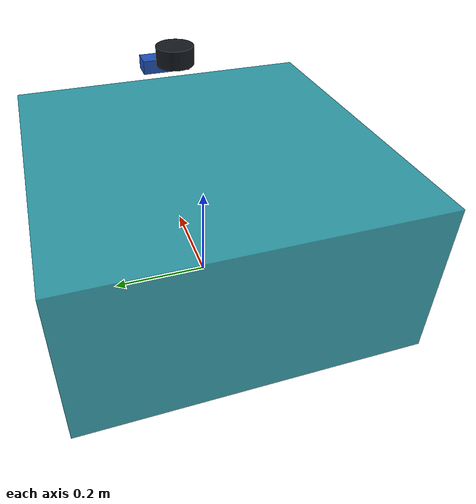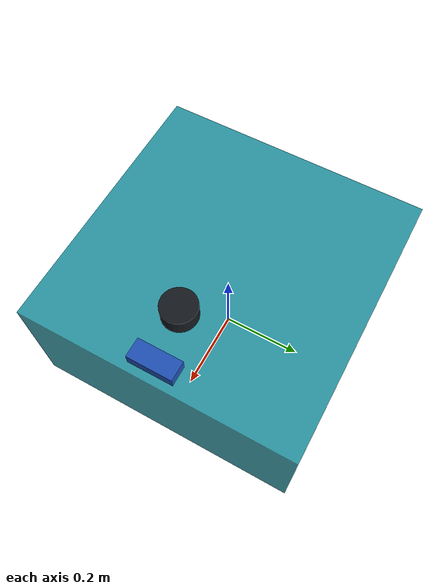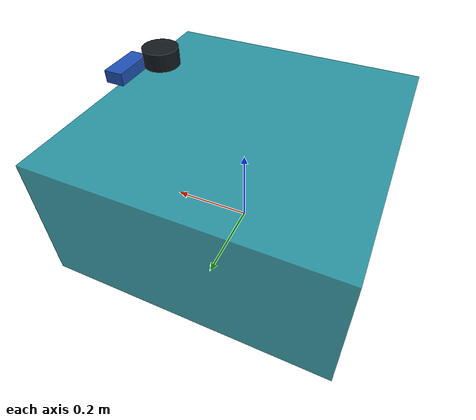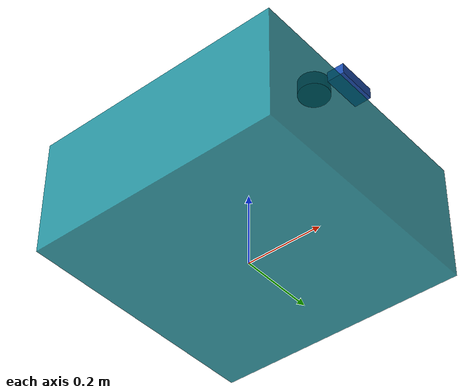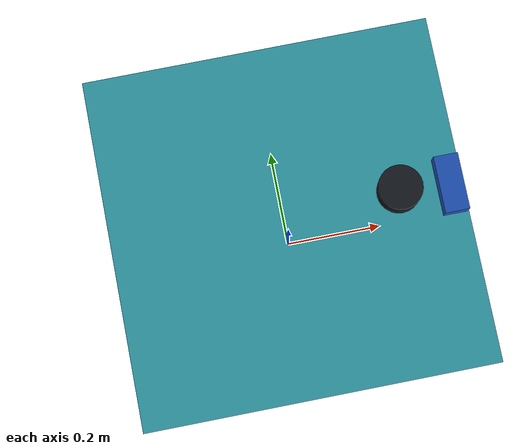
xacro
<?xml version="1.0"?>
<robot xmlns:xacro="http://www.ros.org/wiki/xacro" name="huichuan_agv">
  <xacro:arg name="camera_x" default="0.30"/>
  <xacro:arg name="camera_y" default="0.0"/>
  <xacro:arg name="camera_z" default="0.371"/>
  <xacro:arg name="camera_roll" default="0.0"/>
  <xacro:arg name="camera_pitch" default="0.437"/>
  <xacro:arg name="camera_yaw" default="0.0"/>
  <xacro:arg name="lidar_x" default="0.20"/>
  <xacro:arg name="lidar_y" default="0.0"/>
  <xacro:arg name="lidar_z" default="0.4235"/>

  <material name="chassis_cyan">
    <color rgba="0.03 0.55 0.61 0.82"/>
  </material>
  <material name="sensor_dark">
    <color rgba="0.08 0.10 0.12 1.0"/>
  </material>
  <material name="camera_blue">
    <color rgba="0.12 0.32 0.72 1.0"/>
  </material>

  <!-- Existing odometry defines base_link on the ground at chassis centre. -->
  <link name="base_link"/>

  <link name="chassis_body_link">
    <visual>
      <geometry>
        <box size="0.665 0.665 0.321"/>
      </geometry>
      <material name="chassis_cyan"/>
    </visual>
    <collision>
      <geometry>
        <box size="0.665 0.665 0.321"/>
      </geometry>
    </collision>
  </link>
  <joint name="base_to_chassis_body" type="fixed">
    <parent link="base_link"/>
    <child link="chassis_body_link"/>
    <origin xyz="0 0 0.1605" rpy="0 0 0"/>
  </joint>

  <!-- Visual/collision companion of the functional laser_frame TF. -->
  <link name="lidar_model_link">
    <visual>
      <geometry>
        <cylinder radius="0.040" length="0.040"/>
      </geometry>
      <material name="sensor_dark"/>
    </visual>
    <collision>
      <geometry>
        <cylinder radius="0.040" length="0.040"/>
      </geometry>
    </collision>
  </link>
  <joint name="base_to_lidar_model" type="fixed">
    <parent link="base_link"/>
    <child link="lidar_model_link"/>
    <origin xyz="$(arg lidar_x) $(arg lidar_y) $(arg lidar_z)" rpy="0 0 0"/>
  </joint>

  <!-- Visual/collision companion of the functional camera_link TF. -->
  <link name="camera_model_link">
    <visual>
      <geometry>
        <box size="0.045 0.105 0.030"/>
      </geometry>
      <material name="camera_blue"/>
    </visual>
    <collision>
      <geometry>
        <box size="0.045 0.105 0.030"/>
      </geometry>
    </collision>
  </link>
  <joint name="base_to_camera_model" type="fixed">
    <parent link="base_link"/>
    <child link="camera_model_link"/>
    <origin xyz="$(arg camera_x) $(arg camera_y) $(arg camera_z)"
            rpy="0 0 0"/>
  </joint>
</robot>
